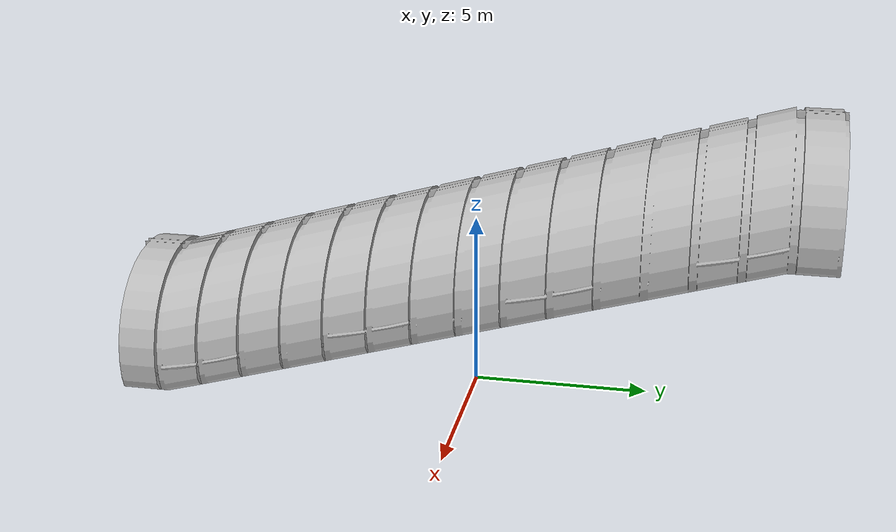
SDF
<?xml version="1.0" ?>
<sdf version="1.6">
  <model name="tunnel_tile_6">
    <static>true</static>
    <link name="link">
      <pose>0 0 0 0 0 0</pose>
      <collision name="collision">
        <geometry>
          <mesh>
            <uri>model://tunnel_tile_6/meshes/tunnel_tile_6.dae</uri>
          </mesh>
        </geometry>
      </collision>

      <collision name="collision_ground_1">
        <pose>0 9.323 5 0 0 0</pose>
        <geometry>
          <box>
            <size>6.356 1.354 0.001</size>
          </box>
        </geometry>
      </collision>

      <collision name="collision_ground_2">
        <pose>0 -0.070 2.467 0.2827433 0 0</pose>
        <geometry>
          <box>
            <size>6.356 18.152 0.001</size>
          </box>
        </geometry>
      </collision>

      <collision name="collision_ground_3">
        <pose>0 -9.272 0 0 0 0</pose>
        <geometry>
          <box>
            <size>6.356 1.455 0.001</size>
          </box>
        </geometry>
      </collision>

      <visual name="visual">
        <geometry>
          <mesh>
            <uri>model://tunnel_tile_6/meshes/tunnel_tile_6.dae</uri>
          </mesh>
        </geometry>
      </visual>
    </link>
  </model>
</sdf>
